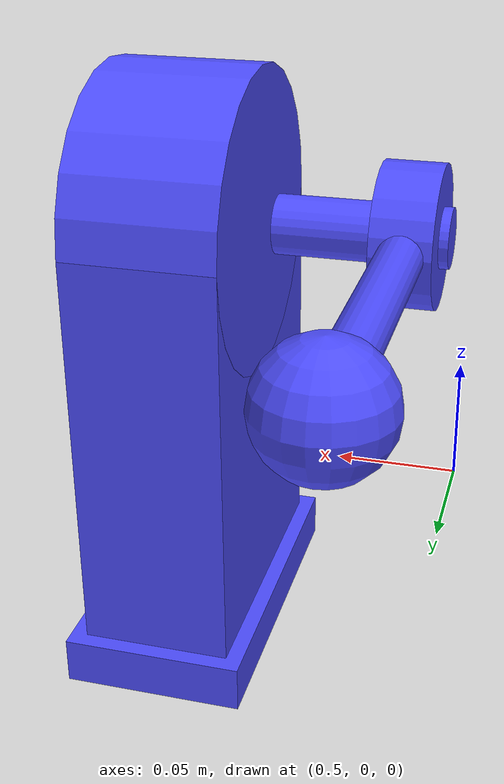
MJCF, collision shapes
<mujoco model="lever">
    <compiler angle="radian" inertiafromgeom="auto" inertiagrouprange="1 5"/>

    <asset>
        <texture name="T_lever_met" type="cube" file="textures/metal1.png"/>

        <material name="lever_col" rgba="0.3 0.3 1.0 0.5" shininess="0" specular="0"/>
        <material name="lever_blue" rgba="0 0 .5 1" shininess="1" reflectance="1" specular="1"/>
        <material name="lever_metal0" rgba=".65 .65 .65 1" texture="T_lever_met" shininess="1" reflectance=".7" specular=".5"/>
        <material name="lever_metal1" rgba=".35 .35 .35 1" texture="T_lever_met" shininess="1" reflectance=".7" specular=".5"/>
    </asset>

    <default>
        <default class="lever_base">
            <joint armature="0.001" damping="2" limited="true"/>
            <geom conaffinity="0" contype="0" group="1" type="mesh"/>
            <position ctrllimited="true" ctrlrange="0 1.57"/>
            <default class="lever_viz">
                <geom condim="4" type="mesh"/>
            </default>
            <default class="lever_col">
                <geom conaffinity="1" condim="3" contype="1" group="4" material="lever_col" solimp="0.99 0.99 0.01" solref="0.01 1"/>
            </default>
            <site type="sphere" size=".01" rgba="0 1 0 1" group="5"/>
        </default>
    </default>

    <asset>
        <mesh file="metaworld/lever/lever_axis.stl" name="lever_axis" scale="0.6 0.6 0.6"/>
        <mesh file="metaworld/lever/lever_base.stl" name="lever_base" scale="0.6 0.6 0.6"/>
        <mesh file="metaworld/lever/lever_handle.stl" name="lever_handle" scale="0.6 0.6 0.6"/>
        <mesh file="metaworld/lever/lever_rod.stl" name="lever_rod" scale="0.6 0.6 0.6"/>
        <mesh file="metaworld/lever/lever_rodbase.stl" name="lever_rodbase" scale="0.6 0.6 0.6"/>
    </asset>

    <worldbody>
        <body childclass="lever_base" name="lever_base" pos="0.58 0.1 -0.01" euler="0 0 -3.14">
            <!-- Static base -->
            <geom material="lever_metal0" euler="0 1.57 0" mesh="lever_base"/>
            <geom class="lever_col" pos="0 0 0.075" size="0.0246 0.0498 0.075" type="box"/>
            <geom class="lever_col" euler="0 1.57 0" pos="0 0 0.15" size="0.0498 0.0246" type="cylinder"/>
            <geom class="lever_col" pos="0 0 0.0078" size="0.03 0.0552 0.0078" type="box"/>

            <!-- Virtual body for target visualization -->
            <body name="lever_link_virtual" pos="0.072 0 0.15">
                <body name="lever_link_virtual_handle" pos="0 -0.12 0">
                    <site name="lever_handle_center_target" pos="0 0 0.0001" group="5"/>
                </body>
            </body>

            <!-- Movable lever handle -->
            <body name="lever_link" pos="0.072 0 0.15">
                <site name="lever_handle_center" pos="0 -0.12 0" group="5"/>
                <joint name="lever_joint" type="hinge" axis="1 0 0" range="0 0.942"/>
                <geom material="lever_metal1" euler="0 1.57 0" mesh="lever_axis"/>
                <geom material="lever_metal0" euler="0 1.57 0" mesh="lever_rodbase"/>
                <geom material="lever_blue" mesh="lever_handle" pos="0 -0.12 0" name="lever_handle"/>
                <geom material="lever_metal1" euler="1.57 0 0" mesh="lever_rod" pos="0 -0.06 0"/>
                <geom class="lever_col" euler="0 1.57 0" size="0.0228 0.0096" type="cylinder"/>
                <geom class="lever_col" euler="1.57 0 0" pos="0 -0.0546 0" size="0.0072 0.06" type="cylinder"/>
                <geom class="lever_col" pos="0 -0.12 0" size="0.018" type="sphere"/>
                <geom class="lever_col" euler="0 1.57 0" pos="-0.015 0 0" size="0.0096 0.0276" type="cylinder"/>
            </body>
        </body>
    </worldbody>
</mujoco>
